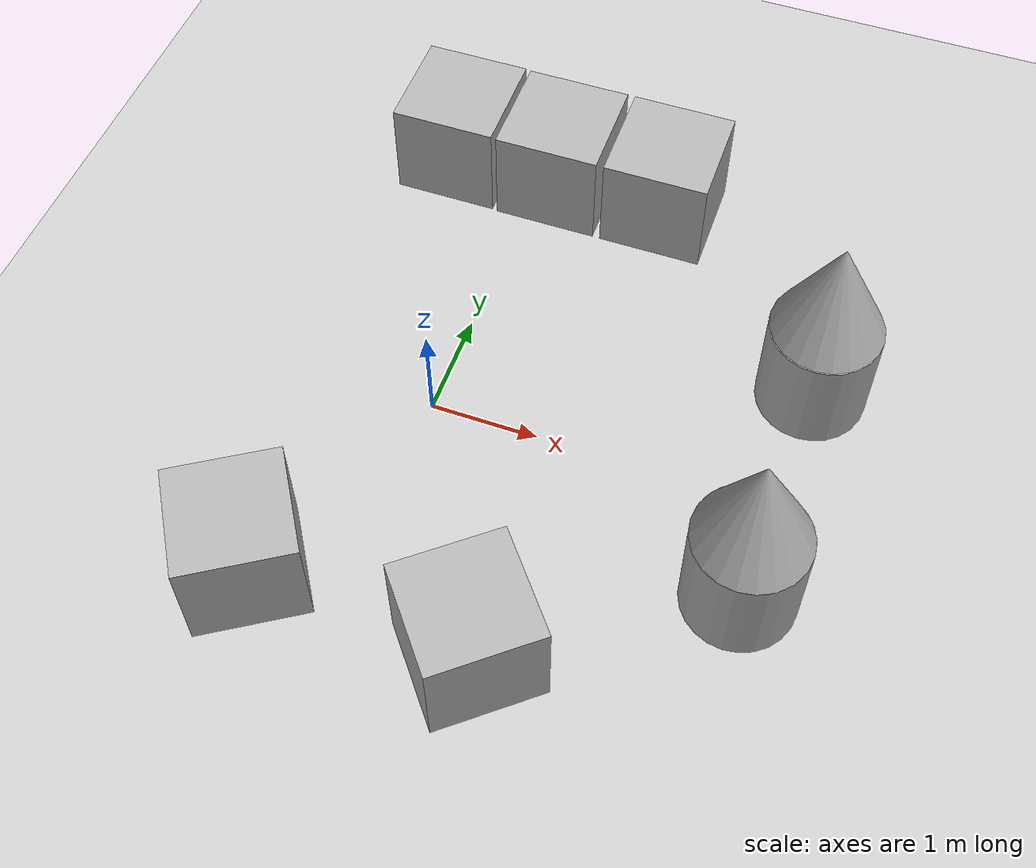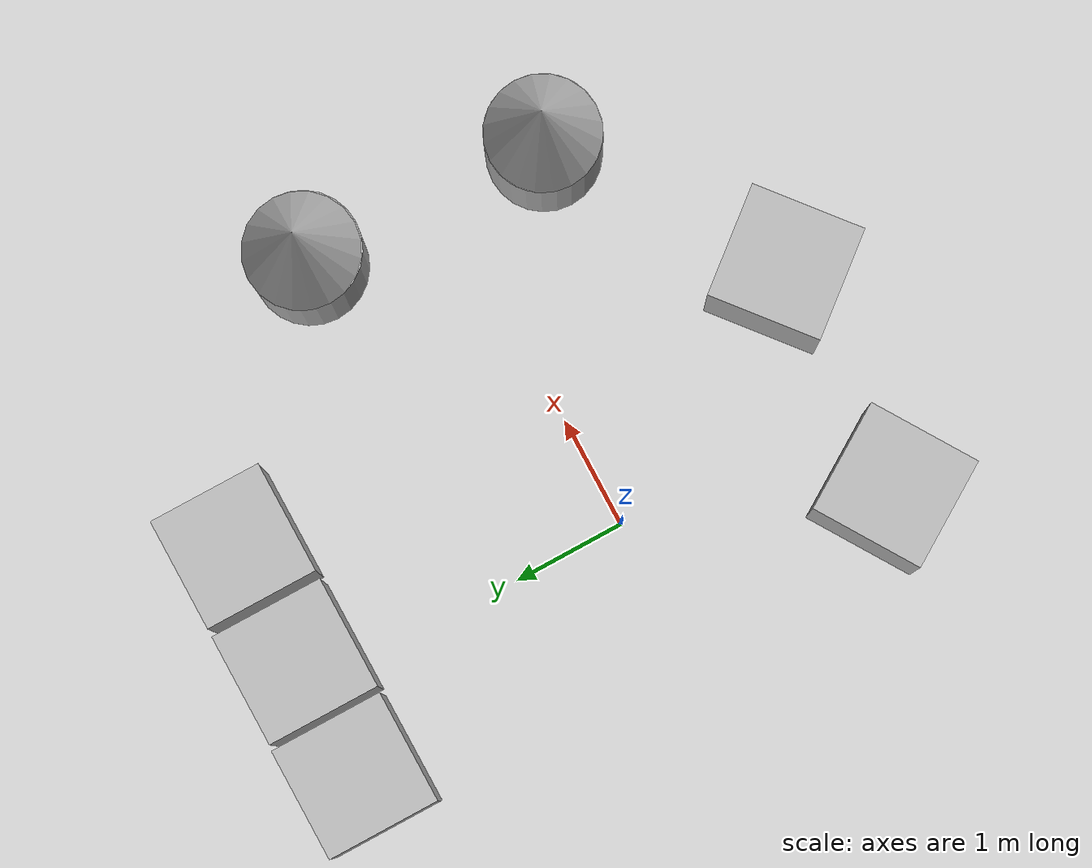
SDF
<?xml version="1.0"?>
<sdf version='1.10'>
  <world name='empty'>
    <physics name='1ms' type='ignored'>
      <max_step_size>0.001</max_step_size>
      <real_time_factor>1</real_time_factor>
      <real_time_update_rate>1000</real_time_update_rate>
    </physics>
    <plugin name='gz::sim::systems::Physics' filename='gz-sim-physics-system'/>
    <plugin name='gz::sim::systems::UserCommands' filename='gz-sim-user-commands-system'/>
    <plugin name='gz::sim::systems::SceneBroadcaster' filename='gz-sim-scene-broadcaster-system'/>
    <plugin name='gz::sim::systems::Contact' filename='gz-sim-contact-system'/>

    <!-- I added this plugin, it's necessary for having sensors in the world -->
    <plugin name='gz::sim::systems::Sensors' filename="gz-sim-sensors-system">
      <render_engine>ogre2</render_engine>
    </plugin>

    <gravity>0 0 -9.8000000000000007</gravity>
    <magnetic_field>5.5644999999999998e-06 2.2875799999999999e-05 -4.2388400000000002e-05</magnetic_field>
    <atmosphere type='adiabatic'/>
    <scene>
      <ambient>0.400000006 0.400000006 0.400000006 1</ambient>
      <background>0.699999988 0.699999988 0.699999988 1</background>
      <shadows>true</shadows>
    </scene>
    <model name='ground_plane'>
      <static>true</static>
      <link name='link'>
        <collision name='collision'>
          <geometry>
            <plane>
              <normal>0 0 1</normal>
              <size>100 100</size>
            </plane>
          </geometry>
          <surface>
            <friction>
              <ode/>
            </friction>
            <bounce/>
            <contact/>
          </surface>
        </collision>
        <visual name='visual'>
          <geometry>
            <plane>
              <normal>0 0 1</normal>
              <size>100 100</size>
            </plane>
          </geometry>
          <material>
            <ambient>0.800000012 0.800000012 0.800000012 1</ambient>
            <diffuse>0.800000012 0.800000012 0.800000012 1</diffuse>
            <specular>0.800000012 0.800000012 0.800000012 1</specular>
          </material>
        </visual>
        <pose>0 0 0 0 0 0</pose>
        <inertial>
          <pose>0 0 0 0 0 0</pose>
          <mass>1</mass>
          <inertia>
            <ixx>1</ixx>
            <ixy>0</ixy>
            <ixz>0</ixz>
            <iyy>1</iyy>
            <iyz>0</iyz>
            <izz>1</izz>
          </inertia>
        </inertial>
        <enable_wind>false</enable_wind>
      </link>
      <pose>0 0 0 0 0 0</pose>
      <self_collide>false</self_collide>
    </model>
    <model name='cylinder'>
      <pose>3.1841599999999999 1.26738 0.49999900000000003 2.3776499999999999e-19 -9.7202900000000001e-20 -2.1001999999999998e-20</pose>
      <link name='cylinder_link'>
        <inertial>
          <inertia>
            <ixx>0.14580000000000001</ixx>
            <ixy>0</ixy>
            <ixz>0</ixz>
            <iyy>0.14580000000000001</iyy>
            <iyz>0</iyz>
            <izz>0.125</izz>
          </inertia>
          <mass>1</mass>
          <pose>0 0 0 0 0 0</pose>
        </inertial>
        <collision name='cylinder_collision'>
          <geometry>
            <cylinder>
              <radius>0.5</radius>
              <length>1</length>
            </cylinder>
          </geometry>
          <surface>
            <friction>
              <ode/>
            </friction>
            <bounce/>
            <contact/>
          </surface>
        </collision>
        <visual name='cylinder_visual'>
          <geometry>
            <cylinder>
              <radius>0.5</radius>
              <length>1</length>
            </cylinder>
          </geometry>
          <material>
            <ambient>0.300000012 0.300000012 0.300000012 1</ambient>
            <diffuse>0.699999988 0.699999988 0.699999988 1</diffuse>
            <specular>1 1 1 1</specular>
          </material>
        </visual>
        <pose>0 0 0 0 0 0</pose>
        <enable_wind>false</enable_wind>
      </link>
      <static>false</static>
      <self_collide>false</self_collide>
    </model>
    <model name='cone'>
      <pose>3.1844196319580078 1.2773000001907346 1.4982600212097168 1.1263699661888733e-07 -4.7125999458331509e-07 -8.3265299354740861e-13</pose>
      <link name='cone_link'>
        <inertial>
          <inertia>
            <ixx>0.074999999999999997</ixx>
            <ixy>0</ixy>
            <ixz>0</ixz>
            <iyy>0.074999999999999997</iyy>
            <iyz>0</iyz>
            <izz>0.074999999999999997</izz>
          </inertia>
          <mass>1</mass>
          <pose>0 0 0 0 0 0</pose>
        </inertial>
        <collision name='cone_collision'>
          <geometry>
            <cone>
              <radius>0.5</radius>
              <length>1</length>
            </cone>
          </geometry>
          <surface>
            <friction>
              <ode/>
            </friction>
            <bounce/>
            <contact/>
          </surface>
        </collision>
        <visual name='cone_visual'>
          <geometry>
            <cone>
              <radius>0.5</radius>
              <length>1</length>
            </cone>
          </geometry>
          <material>
            <ambient>0.300000012 0.300000012 0.300000012 1</ambient>
            <diffuse>0.699999988 0.699999988 0.699999988 1</diffuse>
            <specular>1 1 1 1</specular>
          </material>
        </visual>
        <pose>0 0 0 0 0 0</pose>
        <enable_wind>false</enable_wind>
      </link>
      <static>false</static>
      <self_collide>false</self_collide>
    </model>
    <model name='cylinder_1'>
      <pose>3.0956904724957628 -0.9375677734476866 0.49999898672103882 2.3776500206739541e-19 -9.7202898509901262e-20 -2.1001999430447732e-20</pose>
      <link name='cylinder_link'>
        <inertial>
          <inertia>
            <ixx>0.14580000000000001</ixx>
            <ixy>0</ixy>
            <ixz>0</ixz>
            <iyy>0.14580000000000001</iyy>
            <iyz>0</iyz>
            <izz>0.125</izz>
          </inertia>
          <mass>1</mass>
          <pose>0 0 0 0 0 0</pose>
        </inertial>
        <collision name='cylinder_collision'>
          <geometry>
            <cylinder>
              <radius>0.5</radius>
              <length>1</length>
            </cylinder>
          </geometry>
          <surface>
            <friction>
              <ode/>
            </friction>
            <bounce/>
            <contact/>
          </surface>
        </collision>
        <visual name='cylinder_visual'>
          <geometry>
            <cylinder>
              <radius>0.5</radius>
              <length>1</length>
            </cylinder>
          </geometry>
          <material>
            <ambient>0.300000012 0.300000012 0.300000012 1</ambient>
            <diffuse>0.699999988 0.699999988 0.699999988 1</diffuse>
            <specular>1 1 1 1</specular>
          </material>
        </visual>
        <pose>0 0 0 0 0 0</pose>
        <enable_wind>false</enable_wind>
      </link>
      <static>false</static>
      <self_collide>false</self_collide>
    </model>
    <model name='cone_1'>
      <pose>3.0956904724957628 -0.9375677734476866 1.4982600212097168 1.1263699661888733e-07 -4.7125999458331509e-07 -8.3265299354740861e-13</pose>
      <link name='cone_link'>
        <inertial>
          <inertia>
            <ixx>0.074999999999999997</ixx>
            <ixy>0</ixy>
            <ixz>0</ixz>
            <iyy>0.074999999999999997</iyy>
            <iyz>0</iyz>
            <izz>0.074999999999999997</izz>
          </inertia>
          <mass>1</mass>
          <pose>0 0 0 0 0 0</pose>
        </inertial>
        <collision name='cone_collision'>
          <geometry>
            <cone>
              <radius>0.5</radius>
              <length>1</length>
            </cone>
          </geometry>
          <surface>
            <friction>
              <ode/>
            </friction>
            <bounce/>
            <contact/>
          </surface>
        </collision>
        <visual name='cone_visual'>
          <geometry>
            <cone>
              <radius>0.5</radius>
              <length>1</length>
            </cone>
          </geometry>
          <material>
            <ambient>0.300000012 0.300000012 0.300000012 1</ambient>
            <diffuse>0.699999988 0.699999988 0.699999988 1</diffuse>
            <specular>1 1 1 1</specular>
          </material>
        </visual>
        <pose>0 0 0 0 0 0</pose>
        <enable_wind>false</enable_wind>
      </link>
      <static>false</static>
      <self_collide>false</self_collide>
    </model>
    <model name='box'>
      <pose>1.3036909636328176 2.9176890726827729 0.5 0 0 0</pose>
      <link name='box_link'>
        <inertial>
          <inertia>
            <ixx>0.16666</ixx>
            <ixy>0</ixy>
            <ixz>0</ixz>
            <iyy>0.16666</iyy>
            <iyz>0</iyz>
            <izz>0.16666</izz>
          </inertia>
          <mass>1</mass>
          <pose>0 0 0 0 0 0</pose>
        </inertial>
        <collision name='box_collision'>
          <geometry>
            <box>
              <size>1 1 1</size>
            </box>
          </geometry>
          <surface>
            <friction>
              <ode/>
            </friction>
            <bounce/>
            <contact/>
          </surface>
        </collision>
        <visual name='box_visual'>
          <geometry>
            <box>
              <size>1 1 1</size>
            </box>
          </geometry>
          <material>
            <ambient>0.300000012 0.300000012 0.300000012 1</ambient>
            <diffuse>0.699999988 0.699999988 0.699999988 1</diffuse>
            <specular>1 1 1 1</specular>
          </material>
        </visual>
        <pose>0 0 0 0 0 0</pose>
        <enable_wind>false</enable_wind>
      </link>
      <static>false</static>
      <self_collide>false</self_collide>
    </model>
    <model name='box_1'>
      <pose>0.23153105763193516 2.9187093257591745 0.5 0 0 0</pose>
      <link name='box_link'>
        <inertial>
          <inertia>
            <ixx>0.16666</ixx>
            <ixy>0</ixy>
            <ixz>0</ixz>
            <iyy>0.16666</iyy>
            <iyz>0</iyz>
            <izz>0.16666</izz>
          </inertia>
          <mass>1</mass>
          <pose>0 0 0 0 0 0</pose>
        </inertial>
        <collision name='box_collision'>
          <geometry>
            <box>
              <size>1 1 1</size>
            </box>
          </geometry>
          <surface>
            <friction>
              <ode/>
            </friction>
            <bounce/>
            <contact/>
          </surface>
        </collision>
        <visual name='box_visual'>
          <geometry>
            <box>
              <size>1 1 1</size>
            </box>
          </geometry>
          <material>
            <ambient>0.300000012 0.300000012 0.300000012 1</ambient>
            <diffuse>0.699999988 0.699999988 0.699999988 1</diffuse>
            <specular>1 1 1 1</specular>
          </material>
        </visual>
        <pose>0 0 0 0 0 0</pose>
        <enable_wind>false</enable_wind>
      </link>
      <static>false</static>
      <self_collide>false</self_collide>
    </model>
    <model name='box_2'>
      <pose>-0.81989678247795617 2.9296043383267687 0.5 0 0 0</pose>
      <link name='box_link'>
        <inertial>
          <inertia>
            <ixx>0.16666</ixx>
            <ixy>0</ixy>
            <ixz>0</ixz>
            <iyy>0.16666</iyy>
            <iyz>0</iyz>
            <izz>0.16666</izz>
          </inertia>
          <mass>1</mass>
          <pose>0 0 0 0 0 0</pose>
        </inertial>
        <collision name='box_collision'>
          <geometry>
            <box>
              <size>1 1 1</size>
            </box>
          </geometry>
          <surface>
            <friction>
              <ode/>
            </friction>
            <bounce/>
            <contact/>
          </surface>
        </collision>
        <visual name='box_visual'>
          <geometry>
            <box>
              <size>1 1 1</size>
            </box>
          </geometry>
          <material>
            <ambient>0.300000012 0.300000012 0.300000012 1</ambient>
            <diffuse>0.699999988 0.699999988 0.699999988 1</diffuse>
            <specular>1 1 1 1</specular>
          </material>
        </visual>
        <pose>0 0 0 0 0 0</pose>
        <enable_wind>false</enable_wind>
      </link>
      <static>false</static>
      <self_collide>false</self_collide>
    </model>
    <model name='box_3'>
      <pose>1.1973700523376465 -2.1861701011657715 0.5 0 0 -0.88232193571959694</pose>
      <link name='box_link'>
        <inertial>
          <inertia>
            <ixx>0.16666</ixx>
            <ixy>0</ixy>
            <ixz>0</ixz>
            <iyy>0.16666</iyy>
            <iyz>0</iyz>
            <izz>0.16666</izz>
          </inertia>
          <mass>1</mass>
          <pose>0 0 0 0 0 0</pose>
        </inertial>
        <collision name='box_collision'>
          <geometry>
            <box>
              <size>1 1 1</size>
            </box>
          </geometry>
          <surface>
            <friction>
              <ode/>
            </friction>
            <bounce/>
            <contact/>
          </surface>
        </collision>
        <visual name='box_visual'>
          <geometry>
            <box>
              <size>1 1 1</size>
            </box>
          </geometry>
          <material>
            <ambient>0.300000012 0.300000012 0.300000012 1</ambient>
            <diffuse>0.699999988 0.699999988 0.699999988 1</diffuse>
            <specular>1 1 1 1</specular>
          </material>
        </visual>
        <pose>0 0 0 0 0 0</pose>
        <enable_wind>false</enable_wind>
      </link>
      <static>false</static>
      <self_collide>false</self_collide>
    </model>
    <model name='box_4'>
      <pose>-0.84620100259780895 -2.085439920425415 0.5 0 0 0.56704789202969652</pose>
      <link name='box_link'>
        <inertial>
          <inertia>
            <ixx>0.16666</ixx>
            <ixy>0</ixy>
            <ixz>0</ixz>
            <iyy>0.16666</iyy>
            <iyz>0</iyz>
            <izz>0.16666</izz>
          </inertia>
          <mass>1</mass>
          <pose>0 0 0 0 0 0</pose>
        </inertial>
        <collision name='box_collision'>
          <geometry>
            <box>
              <size>1 1 1</size>
            </box>
          </geometry>
          <surface>
            <friction>
              <ode/>
            </friction>
            <bounce/>
            <contact/>
          </surface>
        </collision>
        <visual name='box_visual'>
          <geometry>
            <box>
              <size>1 1 1</size>
            </box>
          </geometry>
          <material>
            <ambient>0.300000012 0.300000012 0.300000012 1</ambient>
            <diffuse>0.699999988 0.699999988 0.699999988 1</diffuse>
            <specular>1 1 1 1</specular>
          </material>
        </visual>
        <pose>0 0 0 0 0 0</pose>
        <enable_wind>false</enable_wind>
      </link>
      <static>false</static>
      <self_collide>false</self_collide>
    </model>
    <light name='sun' type='directional'>
      <pose>0 0 10 0 0 0</pose>
      <cast_shadows>true</cast_shadows>
      <intensity>1</intensity>
      <direction>-0.5 0.10000000000000001 -0.90000000000000002</direction>
      <diffuse>0.800000012 0.800000012 0.800000012 1</diffuse>
      <specular>0.200000003 0.200000003 0.200000003 1</specular>
      <attenuation>
        <range>1000</range>
        <linear>0.0099999997764825821</linear>
        <constant>0.89999997615814209</constant>
        <quadratic>0.0010000000474974513</quadratic>
      </attenuation>
      <spot>
        <inner_angle>0</inner_angle>
        <outer_angle>0</outer_angle>
        <falloff>0</falloff>
      </spot>
    </light>
  </world>
</sdf>
